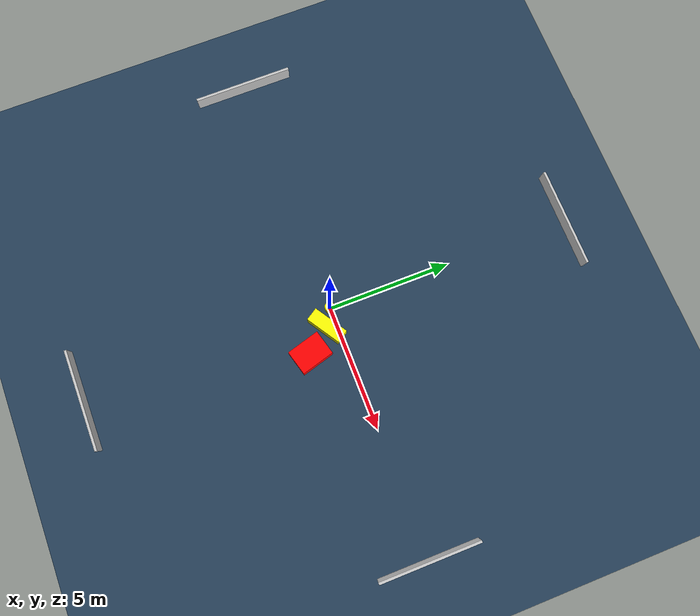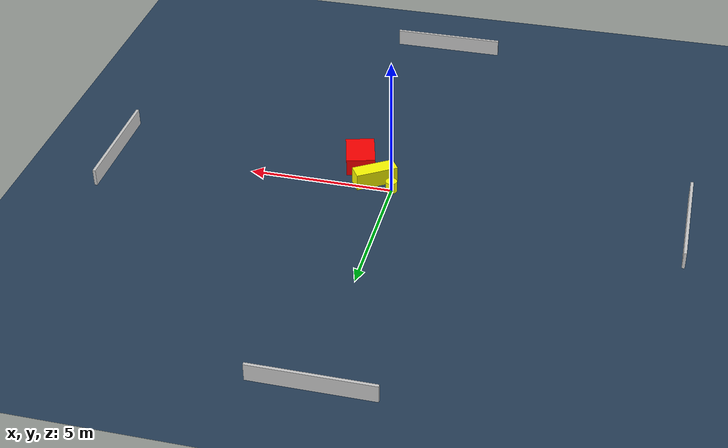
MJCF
<?xml version="1.0" ?>
<mujoco model="generated_environment">
  <option timestep="0.01" integrator="RK4" cone="elliptic"/>
  <default>
    <geom density="1"/>
  </default>
  <asset>
    <texture builtin="gradient" height="3072" name="skybox" rgb1="0.3 0.5 0.7" rgb2="0 0 0" type="skybox" width="512"/>
    <texture builtin="checker" height="300" name="groundplane" rgb1="0.2 0.3 0.4" rgb2="0.1 0.2 0.3" type="2d" width="300"/>
    <material name="groundplane" reflectance="0.2" texrepeat="5 5" texture="groundplane"/>
  </asset>
  <worldbody>
    <light dir="0 0 -1" directional="true" pos="0 0 1.5"/>
    <geom condim="3" friction="0.5 0.005 0.001" material="groundplane" name="floor" pos="0 0 0" size="0 0 0.05" type="plane"/>
    <body name="walls">
      <geom name="wall_1" condim="4" pos="-10.0 0.0 0.3" rgba="0.800000011920929 0.800000011920929 0.800000011920929 1.0" size="0.05 2.0 0.3" type="box"/>
      <geom name="wall_2" condim="4" pos="10.0 0.0 0.3" rgba="0.800000011920929 0.800000011920929 0.800000011920929 1.0" size="0.05 2.0 0.3" type="box"/>
      <geom name="wall_3" condim="4" pos="0.0 -10.0 0.3" rgba="0.800000011920929 0.800000011920929 0.800000011920929 1.0" size="2.0 0.05 0.3" type="box"/>
      <geom name="wall_4" condim="4" pos="0.0 10.0 0.3" rgba="0.800000011920929 0.800000011920929 0.800000011920929 1.0" size="2.0 0.05 0.3" type="box"/>
    </body>
    <body name="robot">
      <joint name="joint_x" type="slide" pos="0 0 0" axis="1 0 0"/>
      <joint name="joint_y" type="slide" pos="0 0 0" axis="0 1 0"/>
      <geom name="robot" type="cylinder" pos="0.0 0.0 0.2" size="0.2 0.2 0.0" mass="5.0" friction="1.0 0.005 0.0001" condim="4" rgba="1.0 1.0 0.0 1.0"/>
    </body>
    <body name="obstacle_1_movable">
      <geom name="obstacle_1_movable" condim="4" pos="0.6666968873844628 -0.3736100441134455 0.3" euler="0 0 122.71416720494373" friction="0.0 0.005 0.001" rgba="1.0 1.0 0.0 1.0" size="0.2708001260141266 0.738913309069273 0.3" type="box" mass="0.1"/>
      <joint type="free"/>
    </body>
    <body name="obstacle_2_static">
      <geom name="obstacle_2_static" condim="4" pos="1.4256851943308702 -1.3407571081041454 0.3" euler="0 0 105.53873442754752" friction="0.0 0.005 0.001" rgba="1.0 0.0 0.0 1.0" size="0.6775350024529481 0.5024156041693574 0.3" type="box"/>
    </body>
  </worldbody>
  <actuator>
    <motor name="actuator_x" joint="joint_x" gear="1" ctrlrange="-1 1"/>
    <motor name="actuator_y" joint="joint_y" gear="1" ctrlrange="-1 1"/>
  </actuator>
</mujoco>
